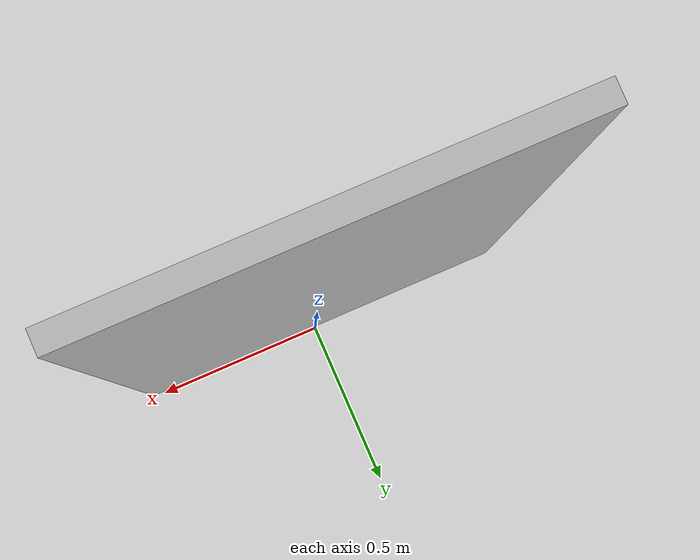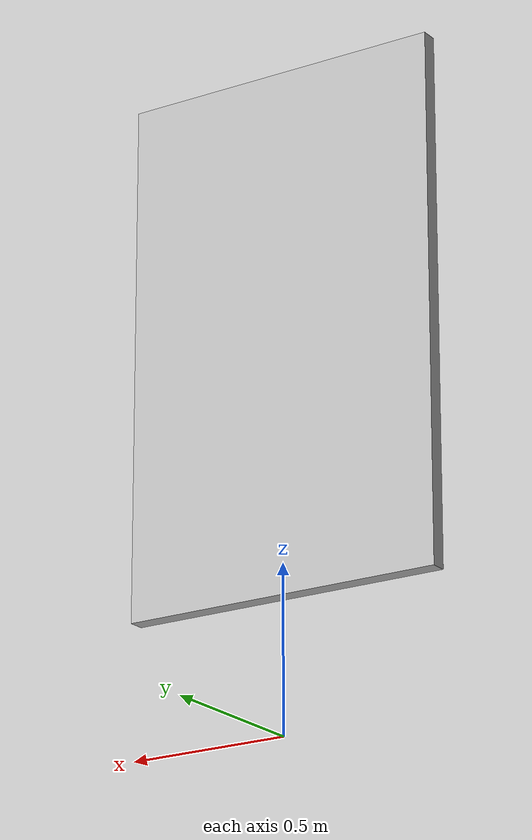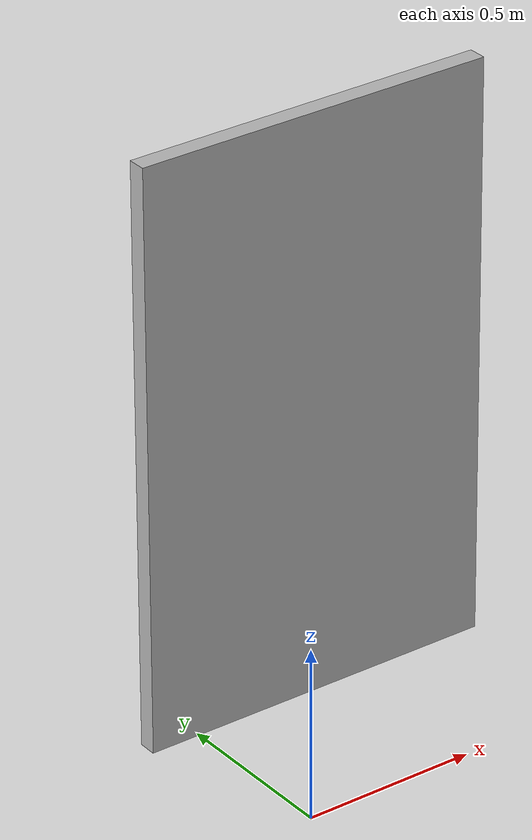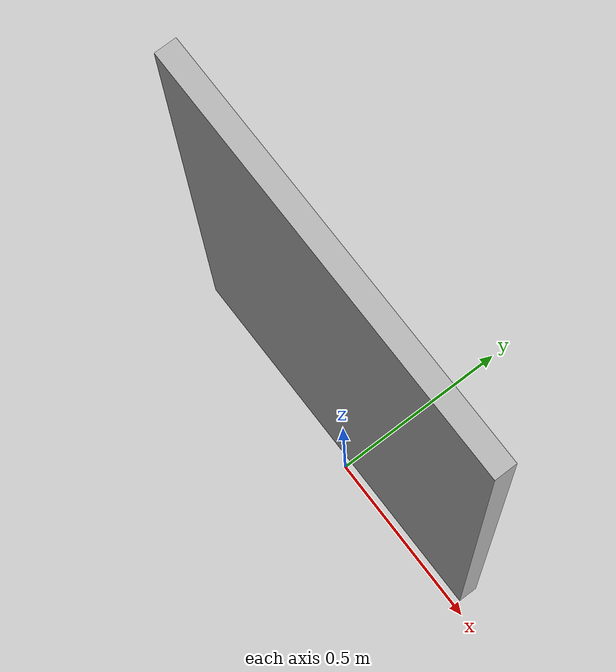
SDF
<?xml version="1.0" ?>
<sdf version="1.5">
  <model name="roomd_img2">

      <pose>0 0 1.2 0 0 0</pose>

      <static>true</static>

      <link name="link">
      <collision name='collision'>
        <geometry>
          <box>
            <size>1 0.05 1.6</size>
          </box>
        </geometry>
      </collision>

      <visual name='visual'>
        <geometry>
          <box>
            <size>1 0.05 1.6</size>
          </box>
        </geometry>

        <material>
          <script>
            <uri>model://leobot_gazebo/models/roomd_img2/materials/scripts</uri>
            <uri>model://leobot_gazebo/models/roomd_img2/materials/textures</uri>
            <name>roomd/img2</name>
          </script>
        </material>
      </visual>
    </link>
  </model>
</sdf>
